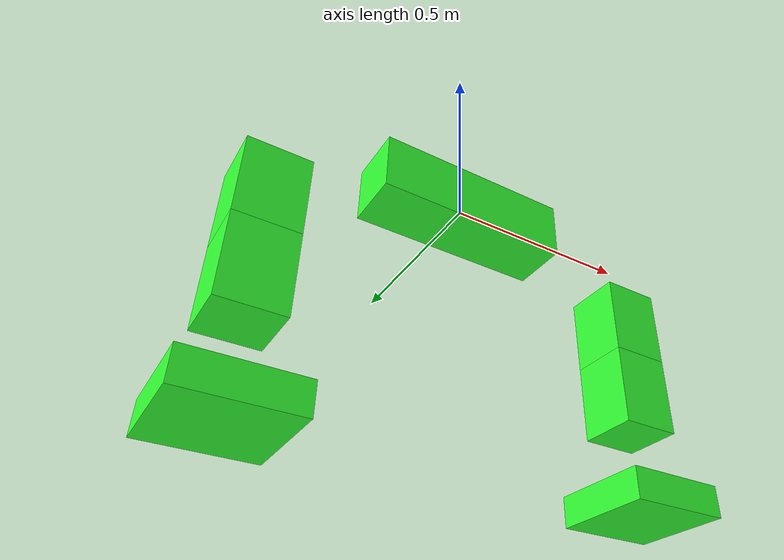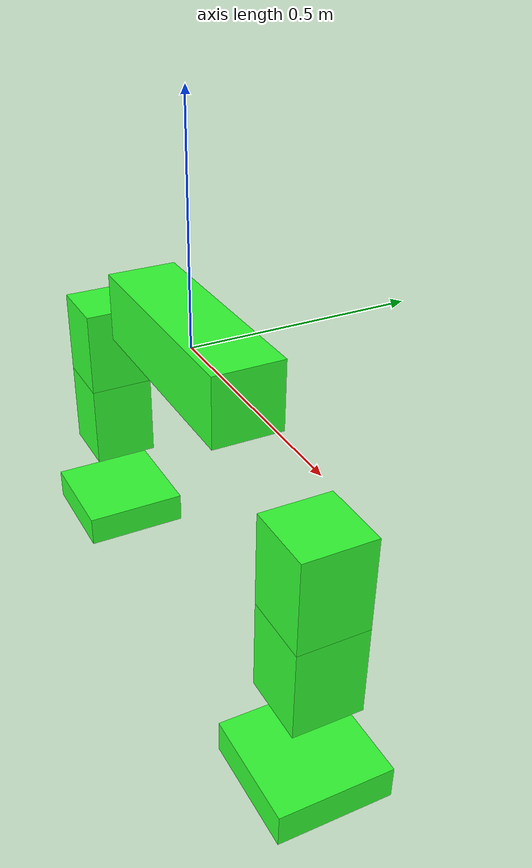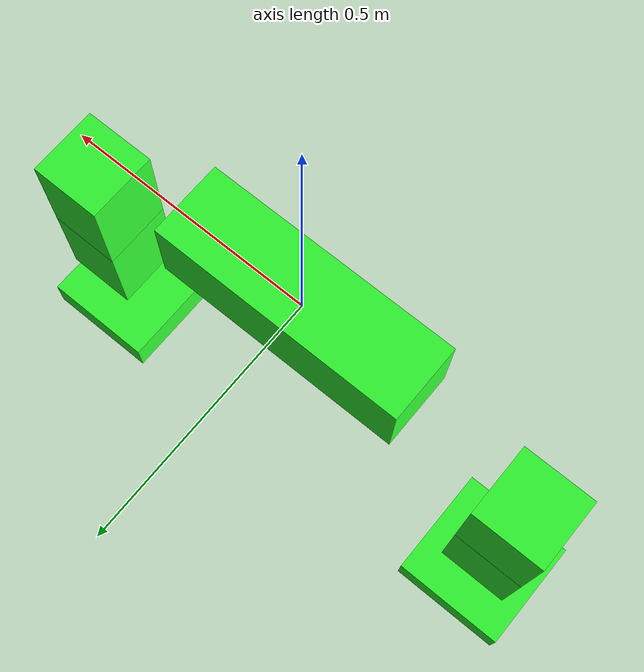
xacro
<?xml version="1.0" ?>
<robot xmlns:xacro="http://www.ros.org/wiki/xacro"  name="kumi">

    <xacro:property name="thikness" value="0.15" />
    <xacro:property name="lenght" value="0.5" />
    <xacro:property name="leg_len" value="0.4" />
    <xacro:property name="foot_len" value="0.25" />
    <xacro:property name="toll" value="0.005" />
    <xacro:property name="mass" value="0.3" />
    <xacro:property name="joint_friction" value="0.5" />

    <ros2_control name="KumiHardware" type="system">
        <hardware>
            <plugin>gazebo_ros2_control/GazeboSystem</plugin>
        </hardware>
        <joint name="front_sh">
            <command_interface name="effort"/>
            <state_interface name="effort"/>
            <state_interface name="position"/>
            <state_interface name="velocity"/>
        </joint>
        <joint name="back_sh">
            <command_interface name="effort"/>
            <state_interface name="effort"/>
            <state_interface name="position"/>
            <state_interface name="velocity"/>
        </joint>
        <joint name="front_knee">
            <command_interface name="effort"/>
            <state_interface name="effort"/>
            <state_interface name="position"/>
            <state_interface name="velocity"/>
        </joint>
        <joint name="back_knee">
            <command_interface name="effort"/>
            <state_interface name="effort"/>
            <state_interface name="position"/>
            <state_interface name="velocity"/>
        </joint>
        <joint name="front_ank">
            <command_interface name="effort"/>
            <state_interface name="effort"/>
            <state_interface name="position"/>
            <state_interface name="velocity"/>
        </joint>
        <joint name="back_ank">
            <command_interface name="effort"/>
            <state_interface name="effort"/>
            <state_interface name="position"/>
            <state_interface name="velocity"/>
        </joint>
    </ros2_control>

    <gazebo>
        <plugin name="gazebo_ros2_control" filename="libgazebo_ros2_control.so">
            <parameters>/home/andreas/dev_ws/install/kumi/share/kumi/config/kumi_effort_cntr_cnfg.yaml</parameters>
        </plugin>
    </gazebo>s

    <link name="body">
        <visual>
            <origin xyz="0 0 0" rpy="0 0 0"/>
            <geometry>
                <box size="${lenght} ${thikness} ${thikness}" />
            </geometry>
            <material name="green">
                <color rgba="0.2 1 0.2 1"/>
            </material>
        </visual>
        <collision>
            <origin xyz="0 0 0" rpy="0 0 0"/>
            <geometry>
                <box size="${lenght-toll} ${thikness-toll} ${thikness-toll}" />
            </geometry>
        </collision>
        <inertial>
            <origin xyz="0 0 0" rpy="0 0 0"/>
            <mass value="0.5" />
            <inertia ixx="0.001875" ixy="0.0" ixz="0.0" iyy="0.011354" iyz="0.0" izz="0.011354" />
        </inertial>
    </link>

   <joint name="front_sh" type="revolute">
        <origin xyz="${lenght} 0 0" rpy="0 0 0"/>
        <parent link="body"/>
        <child link="front_leg"/>
        <axis xyz="0 -1 0"/>
        <limit lower="-0.5" upper="0.5" velocity="5" effort="2"/>
        <dynamics damping="0.1" friction="${joint_friction}"/>
    </joint>

    <link name="front_leg">
        <visual>
            <origin xyz="0 0 ${-leg_len/2}" rpy="0 0 0"/>
            <geometry>
                <box size="${thikness} ${thikness} ${leg_len/2}" />
            </geometry>
            <material name="orange">
                <color rgba="0.2 1 0.2 1"/>
            </material>
        </visual>
        <collision>
            <origin xyz="0 0 ${-leg_len/2}" rpy="0 0 0"/>
            <geometry>
                <box size="${thikness-toll} ${thikness-toll} ${leg_len/2-toll}" />
            </geometry>
        </collision>
        <inertial>
            <origin xyz="0 0 ${-leg_len/2}" rpy="0 0 0"/>
            <mass value="0.3" />
            <inertia ixx="0.001562" ixy="0.0" ixz="0.0" iyy="0.001562" iyz="0.0" izz="0.001125" />
        </inertial>
    </link>

    <joint name="front_knee" type="revolute">
        <origin xyz="0 0 ${-leg_len}" rpy="0 0 0"/>
        <parent link="front_leg"/>
        <child link="front_leg_d"/>
        <axis xyz="0 0 1"/>
        <limit lower="-0.5" upper="0.5" velocity="5" effort="2"/>
        <dynamics damping="10.0" friction="10.0"/>
    </joint>

    <link name="front_leg_d">
        <visual>
            <origin xyz="0 0 0" rpy="0 0 0"/>
            <geometry>
                <box size="${thikness} ${thikness} ${leg_len/2}" />
            </geometry>
            <material name="orange">
                <color rgba="0.2 1 0.2 1"/>
            </material>
        </visual>
        <collision>
            <origin xyz="0 0 0" rpy="0 0 0"/>
            <geometry>
                <box size="${thikness-toll} ${thikness-toll} ${leg_len/2-toll}" />
            </geometry>
        </collision>
        <inertial>
            <origin xyz="0 0 0" rpy="0 0 0"/>
            <mass value="0.3" />
            <inertia ixx="0.001562" ixy="0.0" ixz="0.0" iyy="0.001562" iyz="0.0" izz="0.001125" />
        </inertial>
    </link>

    <joint name="front_ank" type="revolute">
        <origin xyz="0 0 ${-leg_len/2 - thikness/2}" rpy="0 0 0"/>
        <parent link="front_leg_d"/>
        <child link="front_foot"/>
        <axis xyz="0 -1 0"/>
        <limit lower="-0.5" upper="0.5" velocity="5" effort="2"/>
        <dynamics damping="0.1" friction="${joint_friction}"/>
    </joint>

    <link name="front_foot">
        <visual>
            <origin xyz="0 0 0" rpy="0 0 0"/>
            <geometry>
                <box size="${foot_len} ${foot_len} ${thikness/2}" />
            </geometry>
            <material name="white">
                <color rgba="0.2 1 0.2 1"/>
            </material>
        </visual>
        <collision>
            <origin xyz="0 0 0" rpy="0 0 0"/>
            <geometry>
                <box size="${foot_len-toll} ${foot_len-toll} ${thikness/2-toll}" />
            </geometry>
        </collision>
        <inertial>
            <origin xyz="0 0 0" rpy="0 0 0"/>
            <mass value="0.2" />
            <inertia ixx="0.001135" ixy="0.0" ixz="0.0" iyy="0.001135" iyz="0.0" izz="0.002083" />
        </inertial>
    </link>

    <joint name="back_sh" type="revolute">
        <origin xyz="${-lenght} 0 0" rpy="0 0 0"/>
        <parent link="body"/>
        <child link="back_leg"/>
        <axis xyz="0 -1 0"/>
        <limit lower="-0.5" upper="0.5" velocity="5" effort="2"/>
        <dynamics damping="0.1" friction="${joint_friction}"/>
    </joint>

    <link name="back_leg">
        <visual>
            <origin xyz="0 0 ${-leg_len/2}" rpy="0 0 0"/>
            <geometry>
                <box size="${thikness} ${thikness} ${leg_len/2}" />
            </geometry>
            <material name="orange">
                <color rgba="0.2 1 0.2 1"/>
            </material>
        </visual>
        <collision>
            <origin xyz="0 0 ${-leg_len/2}" rpy="0 0 0"/>
            <geometry>
                <box size="${thikness-toll} ${thikness-toll} ${leg_len/2-toll}" />
            </geometry>
        </collision>
        <inertial>
            <origin xyz="0 0 ${-leg_len/2}" rpy="0 0 0"/>
            <mass value="0.3" />
            <inertia ixx="0.001562" ixy="0.0" ixz="0.0" iyy="0.001562" iyz="0.0" izz="0.001125" />
        </inertial>
    </link>

    <joint name="back_knee" type="revolute">
        <origin xyz="0 0 ${-leg_len}" rpy="0 0 0"/>
        <parent link="back_leg"/>
        <child link="back_leg_d"/>
        <axis xyz="0 0 1"/>
        <limit lower="-0.5" upper="0.5" velocity="5" effort="2"/>
        <dynamics damping="10.0" friction="10.0"/>
    </joint>

    <link name="back_leg_d">
        <visual>
            <origin xyz="0 0 0" rpy="0 0 0"/>
            <geometry>
                <box size="${thikness} ${thikness} ${leg_len/2}" />
            </geometry>
            <material name="orange">
                <color rgba="0.2 1 0.2 1"/>
            </material>
        </visual>
        <collision>
            <origin xyz="0 0 0" rpy="0 0 0"/>
            <geometry>
                <box size="${thikness-toll} ${thikness-toll} ${leg_len/2-toll}" />
            </geometry>
        </collision>
        <inertial>
            <origin xyz="0 0 0" rpy="0 0 0"/>
            <mass value="0.3" />
            <inertia ixx="0.001562" ixy="0.0" ixz="0.0" iyy="0.001562" iyz="0.0" izz="0.001125" />
        </inertial>
    </link>

    <joint name="back_ank" type="revolute">
        <origin xyz="0 0 ${-leg_len/2 - thikness/2}" rpy="0 0 0"/>
        <parent link="back_leg_d"/>
        <child link="back_foot"/>
        <axis xyz="0 -1 0"/>
        <limit lower="-0.5" upper="0.5" velocity="5" effort="2"/>
        <dynamics damping="0.1" friction="${joint_friction}"/>
    </joint>

    <link name="back_foot">
        <visual>
            <origin xyz="0 0 0" rpy="0 0 0"/>
            <geometry>
                <box size="${foot_len} ${foot_len} ${thikness/2}" />
            </geometry>
            <material name="white">
                <color rgba="0.2 1 0.2 1"/>
            </material>
        </visual>
        <collision>
            <origin xyz="0 0 0" rpy="0 0 0"/>
            <geometry>
                <box size="${foot_len-toll} ${foot_len-toll} ${thikness/2-toll}" />
            </geometry>
        </collision>
        <inertial>
            <origin xyz="0 0 0" rpy="0 0 0"/>
            <mass value="0.2" />
            <inertia ixx="0.001135" ixy="0.0" ixz="0.0" iyy="0.001135" iyz="0.0" izz="0.002083" />
        </inertial>
    </link>

</robot>
